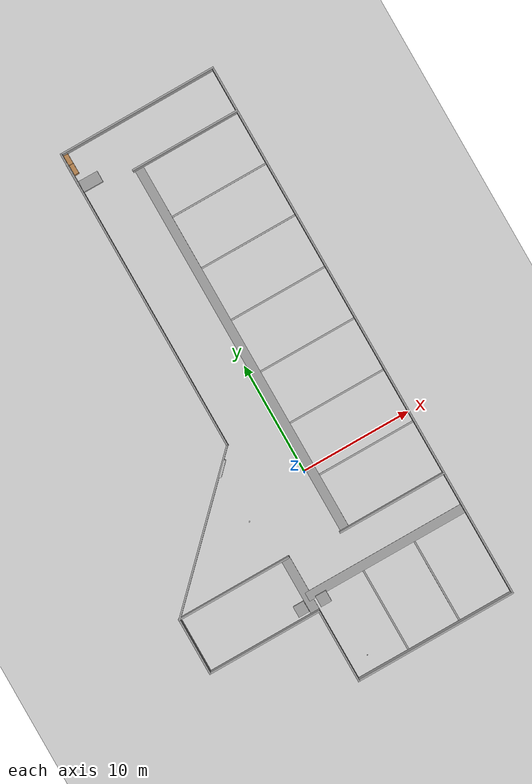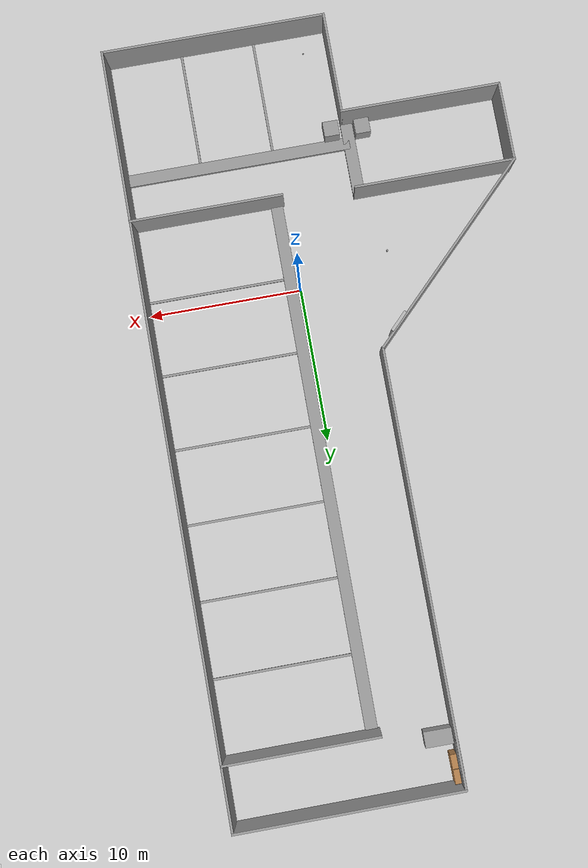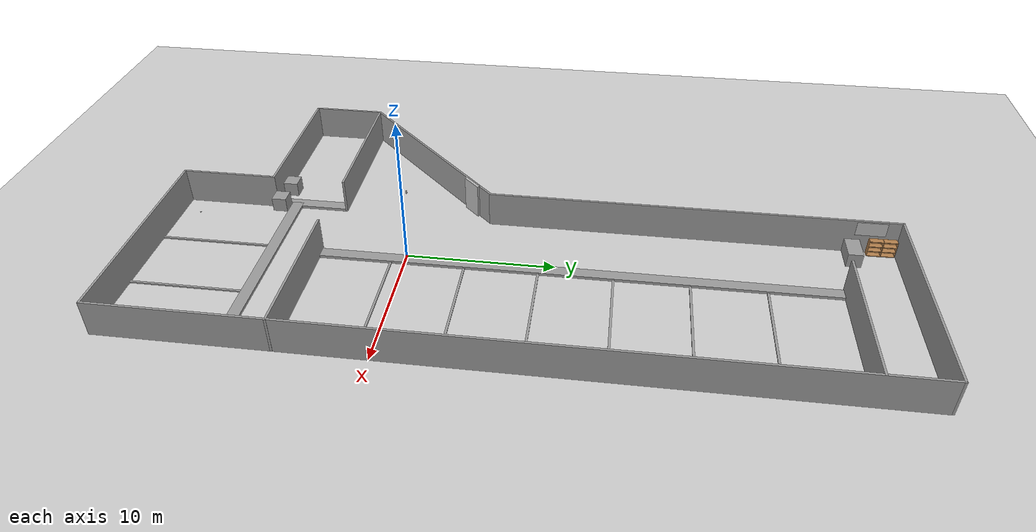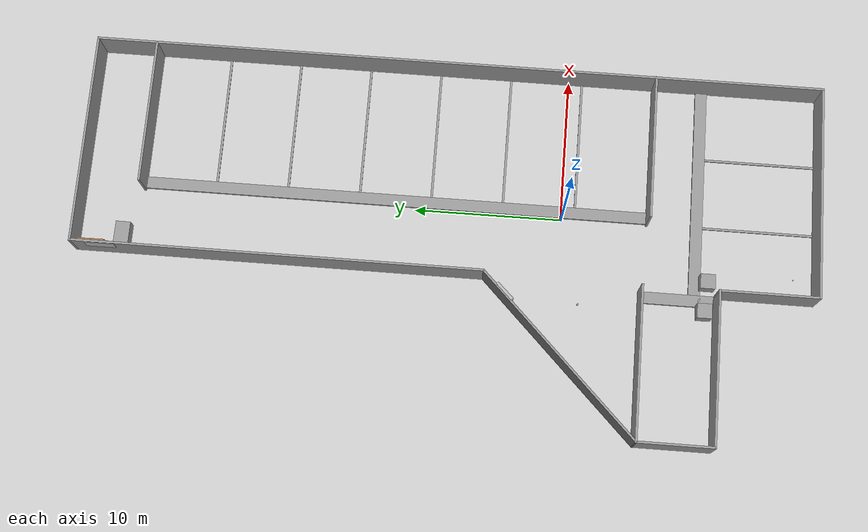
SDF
<sdf version="1.6">
 <world name="default">
  <model name="ground_plane">
   <static>1</static>
   <link name="link">
    <collision name="collision">
     <geometry><plane><normal>0 0 1</normal><size>100 100</size></plane></geometry>
     <surface>
      <contact><collide_bitmask>65535</collide_bitmask></contact>
      <friction><ode><mu>100</mu><mu2>50</mu2></ode></friction>
     </surface>
    </collision>
    <visual name="visual">
     <cast_shadows>0</cast_shadows>
     <geometry><plane><normal>0 0 1</normal><size>100 100</size></plane></geometry>
     <material>
      <script><uri>file://media/materials/scripts/gazebo.material</uri><name>Gazebo/Grey</name></script>
     </material>
    </visual>
   </link>
   <pose>-3.51447 11.9136 0 0 -0 0</pose>
  </model>
  <model name="bookshelf">
   <static>1</static>
   <link name="link">
    <inertial><mass>1</mass></inertial>
    <collision name="back">
     <pose>0 0.005 0.6 0 -0 0</pose>
     <geometry><box><size>0.9 0.01 1.2</size></box></geometry>
    </collision>
    <visual name="visual1">
     <pose>0 0.005 0.6 0 -0 0</pose>
     <geometry><box><size>0.9 0.01 1.2</size></box></geometry>
     <material>
      <script><uri>file://media/materials/scripts/gazebo.material</uri><name>Gazebo/Wood</name></script>
     </material>
    </visual>
    <collision name="left_side">
     <pose>0.45 -0.195 0.6 0 -0 0</pose>
     <geometry><box><size>0.02 0.4 1.2</size></box></geometry>
    </collision>
    <visual name="visual2">
     <pose>0.45 -0.195 0.6 0 -0 0</pose>
     <geometry><box><size>0.02 0.4 1.2</size></box></geometry>
     <material>
      <script><uri>file://media/materials/scripts/gazebo.material</uri><name>Gazebo/Wood</name></script>
     </material>
    </visual>
    <collision name="right_side">
     <pose>-0.45 -0.195 0.6 0 -0 0</pose>
     <geometry><box><size>0.02 0.4 1.2</size></box></geometry>
    </collision>
    <visual name="visual3">
     <pose>-0.45 -0.195 0.6 0 -0 0</pose>
     <geometry><box><size>0.02 0.4 1.2</size></box></geometry>
     <material>
      <script><uri>file://media/materials/scripts/gazebo.material</uri><name>Gazebo/Wood</name></script>
     </material>
    </visual>
    <collision name="bottom">
     <pose>0 -0.195 0.03 0 -0 0</pose>
     <geometry><box><size>0.88 0.4 0.06</size></box></geometry>
    </collision>
    <visual name="visual4">
     <pose>0 -0.195 0.03 0 -0 0</pose>
     <geometry><box><size>0.88 0.4 0.06</size></box></geometry>
     <material>
      <script><uri>file://media/materials/scripts/gazebo.material</uri><name>Gazebo/Wood</name></script>
     </material>
    </visual>
    <collision name="top">
     <pose>0 -0.195 1.19 0 -0 0</pose>
     <geometry><box><size>0.88 0.4 0.02</size></box></geometry>
    </collision>
    <visual name="visual5">
     <pose>0 -0.195 1.19 0 -0 0</pose>
     <geometry><box><size>0.88 0.4 0.02</size></box></geometry>
     <material>
      <script><uri>file://media/materials/scripts/gazebo.material</uri><name>Gazebo/Wood</name></script>
     </material>
    </visual>
    <collision name="low_shelf">
     <pose>0 -0.195 0.43 0 -0 0</pose>
     <geometry><box><size>0.88 0.4 0.02</size></box></geometry>
    </collision>
    <visual name="visual6">
     <pose>0 -0.195 0.43 0 -0 0</pose>
     <geometry><box><size>0.88 0.4 0.02</size></box></geometry>
     <material>
      <script><uri>file://media/materials/scripts/gazebo.material</uri><name>Gazebo/Wood</name></script>
     </material>
    </visual>
    <collision name="high_shelf">
     <pose>0 -0.195 0.8 0 -0 0</pose>
     <geometry><box><size>0.88 0.4 0.02</size></box></geometry>
    </collision>
    <visual name="visual7">
     <pose>0 -0.195 0.8 0 -0 0</pose>
     <geometry><box><size>0.88 0.4 0.02</size></box></geometry>
     <material>
      <script><uri>file://media/materials/scripts/gazebo.material</uri><name>Gazebo/Wood</name></script>
     </material>
    </visual>
   </link>
   <pose>-4.34494 32.0429 0 0 -0 1.57907</pose>
  </model>
  <model name="unit_box_0">
   <pose>-3.45196 29.5704 0.53 0 0 -0.006034</pose>
   <link name="link">
    <inertial>
     <mass>1</mass>
     <inertia>
      <ixx>0.166667</ixx>
      <ixy>0</ixy>
      <ixz>0</ixz>
      <iyy>0.166667</iyy>
      <iyz>0</iyz>
      <izz>0.166667</izz>
     </inertia>
    </inertial>
    <collision name="collision"><geometry><box><size>1.79572 1 1</size></box></geometry></collision>
    <visual name="visual">
     <geometry><box><size>1.79572 1 1</size></box></geometry>
     <material>
      <script><name>Gazebo/Grey</name><uri>file://media/materials/scripts/gazebo.material</uri></script>
     </material>
    </visual>
   </link>
  </model>
  <model name="unit_box_10">
   <pose>-3.82498 -9.95326 1 0 -0 0.000154</pose>
   <link name="link">
    <inertial>
     <mass>1</mass>
     <inertia>
      <ixx>0.166667</ixx>
      <ixy>0</ixy>
      <ixz>0</ixz>
      <iyy>0.166667</iyy>
      <iyz>0</iyz>
      <izz>0.166667</izz>
     </inertia>
    </inertial>
    <collision name="collision"><geometry><box><size>1 1 1</size></box></geometry></collision>
    <visual name="visual">
     <geometry><box><size>1 1 1</size></box></geometry>
     <material>
      <script><name>Gazebo/Grey</name><uri>file://media/materials/scripts/gazebo.material</uri></script>
     </material>
    </visual>
   </link>
  </model>
  <model name="unit_box_11">
   <pose>-5.85343 -9.79611 1 2e-06 -2e-06 0.007156</pose>
   <link name="link">
    <inertial>
     <mass>1</mass>
     <inertia>
      <ixx>0.166667</ixx>
      <ixy>0</ixy>
      <ixz>0</ixz>
      <iyy>0.166667</iyy>
      <iyz>0</iyz>
      <izz>0.166667</izz>
     </inertia>
    </inertial>
    <collision name="collision"><geometry><box><size>1 1 1</size></box></geometry></collision>
    <visual name="visual">
     <geometry><box><size>1 1 1</size></box></geometry>
     <material>
      <script><name>Gazebo/Grey</name><uri>file://media/materials/scripts/gazebo.material</uri></script>
     </material>
    </visual>
   </link>
  </model>
  <model name="Untitledasdasd">
   <pose>-2.51851 7.69425 0 0 -0 0</pose>
   <link name="Wall_0">
    <collision name="Wall_0_Collision">
     <geometry><box><size>15 0.15 2.5</size></box></geometry>
     <pose>0 0 1.25 0 -0 0</pose>
    </collision>
    <visual name="Wall_0_Visual">
     <pose>0 0 1.25 0 -0 0</pose>
     <geometry><box><size>15 0.15 2.5</size></box></geometry>
     <material>
      <script><uri>file://media/materials/scripts/gazebo.material</uri><name>Gazebo/Grey</name></script>
      <ambient>0.105882 0.0745098 0.0745098 1</ambient>
     </material>
     <meta><layer>0</layer></meta>
    </visual>
    <pose>-7.21413 -7.96136 0 0 -0 -2.35619</pose>
   </link>
   <link name="Wall_14">
    <collision name="Wall_14_Collision">
     <geometry><box><size>27.75 0.15 2.5</size></box></geometry>
     <pose>0 0 1.25 0 -0 0</pose>
    </collision>
    <visual name="Wall_14_Visual">
     <pose>0 0 1.25 0 -0 0</pose>
     <geometry><box><size>27.75 0.15 2.5</size></box></geometry>
     <material>
      <script><uri>file://media/materials/scripts/gazebo.material</uri><name>Gazebo/Grey</name></script>
      <ambient>0.105882 0.0745098 0.0745098 1</ambient>
     </material>
     <meta><layer>0</layer></meta>
    </visual>
    <pose>-1.90935 11.1233 0 0 -0 -1.5708</pose>
   </link>
   <link name="Wall_16">
    <collision name="Wall_16_Collision">
     <geometry><box><size>14.545 0.15 2.5</size></box></geometry>
     <pose>0 0 1.25 0 -0 0</pose>
    </collision>
    <visual name="Wall_16_Visual">
     <pose>0 0 1.25 0 -0 0</pose>
     <geometry><box><size>14.545 0.15 2.5</size></box></geometry>
     <material>
      <script><uri>file://media/materials/scripts/gazebo.material</uri><name>Gazebo/Grey</name></script>
      <ambient>0.105882 0.0745098 0.0745098 1</ambient>
     </material>
     <meta><layer>0</layer></meta>
    </visual>
    <pose>5.28812 24.9308 0 0 -0 0.001049</pose>
   </link>
   <link name="Wall_18">
    <collision name="Wall_18_Collision">
     <geometry><box><size>10 0.15 2.5</size></box></geometry>
     <pose>0 0 1.25 0 -0 0</pose>
    </collision>
    <visual name="Wall_18_Visual">
     <pose>0 0 1.25 0 -0 0</pose>
     <geometry><box><size>10 0.15 2.5</size></box></geometry>
     <material>
      <script><uri>file://media/materials/scripts/gazebo.material</uri><name>Gazebo/Grey</name></script>
      <ambient>0.105882 0.0745098 0.0745098 1</ambient>
     </material>
     <meta><layer>0</layer></meta>
    </visual>
    <pose>7.53565 20.8688 0 0 -0 0</pose>
   </link>
   <link name="Wall_20">
    <collision name="Wall_20_Collision">
     <geometry><box><size>9 0.15 0.1</size></box></geometry>
     <pose>0 0 0.05 0 -0 0</pose>
    </collision>
    <visual name="Wall_20_Visual">
     <pose>0 0 0.05 0 -0 0</pose>
     <geometry><box><size>9 0.15 0.1</size></box></geometry>
     <material>
      <script><uri>file://media/materials/scripts/gazebo.material</uri><name>Gazebo/Grey</name></script>
      <ambient>1 1 1 1</ambient>
     </material>
     <meta><layer>0</layer></meta>
    </visual>
    <pose>7.93325 16.0236 0 0 -0 0</pose>
   </link>
   <link name="Wall_22">
    <collision name="Wall_22_Collision">
     <geometry><box><size>9 0.15 0.1</size></box></geometry>
     <pose>0 0 0.05 0 -0 0</pose>
    </collision>
    <visual name="Wall_22_Visual">
     <pose>0 0 0.05 0 -0 0</pose>
     <geometry><box><size>9 0.15 0.1</size></box></geometry>
     <material>
      <script><uri>file://media/materials/scripts/gazebo.material</uri><name>Gazebo/Grey</name></script>
      <ambient>1 1 1 1</ambient>
     </material>
     <meta><layer>0</layer></meta>
    </visual>
    <pose>7.93325 11.1126 0 0 -0 0</pose>
   </link>
   <link name="Wall_24">
    <collision name="Wall_24_Collision">
     <geometry><box><size>9 0.15 0.1</size></box></geometry>
     <pose>0 0 0.05 0 -0 0</pose>
    </collision>
    <visual name="Wall_24_Visual">
     <pose>0 0 0.05 0 -0 0</pose>
     <geometry><box><size>9 0.15 0.1</size></box></geometry>
     <material>
      <script><uri>file://media/materials/scripts/gazebo.material</uri><name>Gazebo/Grey</name></script>
      <ambient>1 1 1 1</ambient>
     </material>
     <meta><layer>0</layer></meta>
    </visual>
    <pose>7.91425 6.16455 0 0 -0 0</pose>
   </link>
   <link name="Wall_26">
    <collision name="Wall_26_Collision">
     <geometry><box><size>9 0.15 0.1</size></box></geometry>
     <pose>0 0 0.05 0 -0 0</pose>
    </collision>
    <visual name="Wall_26_Visual">
     <pose>0 0 0.05 0 -0 0</pose>
     <geometry><box><size>9 0.15 0.1</size></box></geometry>
     <material>
      <script><uri>file://media/materials/scripts/gazebo.material</uri><name>Gazebo/Grey</name></script>
      <ambient>1 1 1 1</ambient>
     </material>
     <meta><layer>0</layer></meta>
    </visual>
    <pose>7.93325 1.24455 0 0 -0 0</pose>
   </link>
   <link name="Wall_28">
    <collision name="Wall_28_Collision">
     <geometry><box><size>9 0.15 0.1</size></box></geometry>
     <pose>0 0 0.05 0 -0 0</pose>
    </collision>
    <visual name="Wall_28_Visual">
     <pose>0 0 0.05 0 -0 0</pose>
     <geometry><box><size>9 0.15 0.1</size></box></geometry>
     <material>
      <script><uri>file://media/materials/scripts/gazebo.material</uri><name>Gazebo/Grey</name></script>
      <ambient>1 1 1 1</ambient>
     </material>
     <meta><layer>0</layer></meta>
    </visual>
    <pose>7.90425 -3.66545 0 0 -0 0</pose>
   </link>
   <link name="Wall_3">
    <collision name="Wall_3_Collision">
     <geometry><box><size>5.25 0.15 2.5</size></box></geometry>
     <pose>0 0 1.25 0 -0 0</pose>
    </collision>
    <visual name="Wall_3_Visual">
     <pose>0 0 1.25 0 -0 0</pose>
     <geometry><box><size>5.25 0.15 2.5</size></box></geometry>
     <material>
      <script><uri>file://media/materials/scripts/gazebo.material</uri><name>Gazebo/Grey</name></script>
      <ambient>0.105882 0.0745098 0.0745098 1</ambient>
     </material>
     <meta><layer>0</layer></meta>
    </visual>
    <pose>-12.4644 -15.7616 0 0 -0 -1.5708</pose>
   </link>
   <link name="Wall_30">
    <collision name="Wall_30_Collision">
     <geometry><box><size>9 0.15 0.1</size></box></geometry>
     <pose>0 0 0.05 0 -0 0</pose>
    </collision>
    <visual name="Wall_30_Visual">
     <pose>0 0 0.05 0 -0 0</pose>
     <geometry><box><size>9 0.15 0.1</size></box></geometry>
     <material>
      <script><uri>file://media/materials/scripts/gazebo.material</uri><name>Gazebo/Grey</name></script>
      <ambient>1 1 1 1</ambient>
     </material>
     <meta><layer>0</layer></meta>
    </visual>
    <pose>7.93325 -8.60445 0 0 -0 0</pose>
   </link>
   <link name="Wall_33">
    <collision name="Wall_33_Collision">
     <geometry><box><size>10 0.15 2.5</size></box></geometry>
     <pose>0 0 1.25 0 -0 0</pose>
    </collision>
    <visual name="Wall_33_Visual">
     <pose>0 0 1.25 0 -0 0</pose>
     <geometry><box><size>10 0.15 2.5</size></box></geometry>
     <material>
      <script><uri>file://media/materials/scripts/gazebo.material</uri><name>Gazebo/Grey</name></script>
      <ambient>0.105882 0.0745098 0.0745098 1</ambient>
     </material>
     <meta><layer>0</layer></meta>
    </visual>
    <pose>7.57047 -13.5431 0 0 -0 0</pose>
   </link>
   <link name="Wall_37">
    <collision name="Wall_37_Collision">
     <geometry><box><size>15 0.8 0.2</size></box></geometry>
     <pose>0 0 0.1 0 -0 0</pose>
    </collision>
    <visual name="Wall_37_Visual">
     <pose>0 0 0.1 0 -0 0</pose>
     <geometry><box><size>15 0.8 0.2</size></box></geometry>
     <material>
      <script><uri>file://media/materials/scripts/gazebo.material</uri><name>Gazebo/Grey</name></script>
      <ambient>1 1 1 1</ambient>
     </material>
     <meta><layer>0</layer></meta>
    </visual>
    <pose>5.05877 -16.9274 0 0 -0 0</pose>
   </link>
   <link name="Wall_40">
    <collision name="Wall_40_Collision">
     <geometry><box><size>5.25 0.8 0.2</size></box></geometry>
     <pose>0 0 0.1 0 -0 0</pose>
    </collision>
    <visual name="Wall_40_Visual">
     <pose>0 0 0.1 0 -0 0</pose>
     <geometry><box><size>5.25 0.8 0.2</size></box></geometry>
     <material>
      <script><uri>file://media/materials/scripts/gazebo.material</uri><name>Gazebo/Grey</name></script>
      <ambient>1 1 1 1</ambient>
     </material>
     <meta><layer>0</layer></meta>
    </visual>
    <pose>-2.43969 -15.7711 0 0 -0 -1.5708</pose>
   </link>
   <link name="Wall_43">
    <collision name="Wall_43_Collision">
     <geometry><box><size>7.75 0.15 0.1</size></box></geometry>
     <pose>0 0 0.05 0 -0 0</pose>
    </collision>
    <visual name="Wall_43_Visual">
     <pose>0 0 0.05 0 -0 0</pose>
     <geometry><box><size>7.75 0.15 0.1</size></box></geometry>
     <material>
      <script><uri>file://media/materials/scripts/gazebo.material</uri><name>Gazebo/Grey</name></script>
      <ambient>1 1 1 1</ambient>
     </material>
     <meta><layer>0</layer></meta>
    </visual>
    <pose>2.70025 -21.0684 0 0 -0 1.5708</pose>
   </link>
   <link name="Wall_45">
    <collision name="Wall_45_Collision">
     <geometry><box><size>7.75 0.15 0.1</size></box></geometry>
     <pose>0 0 0.05 0 -0 0</pose>
    </collision>
    <visual name="Wall_45_Visual">
     <pose>0 0 0.05 0 -0 0</pose>
     <geometry><box><size>7.75 0.15 0.1</size></box></geometry>
     <material>
      <script><uri>file://media/materials/scripts/gazebo.material</uri><name>Gazebo/Grey</name></script>
      <ambient>1 1 1 1</ambient>
     </material>
     <meta><layer>0</layer></meta>
    </visual>
    <pose>7.57625 -21.1384 0 0 -0 1.5708</pose>
   </link>
   <link name="Wall_47">
    <collision name="Wall_47_Collision">
     <geometry><box><size>10.5 0.15 2.5</size></box></geometry>
     <pose>0 0 1.25 0 -0 0</pose>
    </collision>
    <visual name="Wall_47_Visual">
     <pose>0 0 1.25 0 -0 0</pose>
     <geometry><box><size>10.5 0.15 2.5</size></box></geometry>
     <material>
      <script><uri>file://media/materials/scripts/gazebo.material</uri><name>Gazebo/Grey</name></script>
      <ambient>0.105882 0.0745098 0.0745098 1</ambient>
     </material>
     <meta><layer>0</layer></meta>
    </visual>
    <pose>-7.2894 -13.2116 0 0 -0 0</pose>
   </link>
   <link name="Wall_49">
    <collision name="Wall_49_Collision">
     <geometry><box><size>34.5 0.8 0.2</size></box></geometry>
     <pose>0 0 0.1 0 -0 0</pose>
    </collision>
    <visual name="Wall_49_Visual">
     <pose>0 0 0.1 0 -0 0</pose>
     <geometry><box><size>34.5 0.8 0.2</size></box></geometry>
     <material>
      <script><uri>file://media/materials/scripts/gazebo.material</uri><name>Gazebo/Grey</name></script>
      <ambient>1 1 1 1</ambient>
     </material>
     <meta><layer>0</layer></meta>
    </visual>
    <pose>3.07569 3.69647 0 0 -0 -1.5708</pose>
   </link>
   <link name="Wall_6">
    <collision name="Wall_6_Collision">
     <geometry><box><size>10.5 0.15 2.5</size></box></geometry>
     <pose>0 0 1.25 0 -0 0</pose>
    </collision>
    <visual name="Wall_6_Visual">
     <pose>0 0 1.25 0 -0 0</pose>
     <geometry><box><size>10.5 0.15 2.5</size></box></geometry>
     <material>
      <script><uri>file://media/materials/scripts/gazebo.material</uri><name>Gazebo/Grey</name></script>
      <ambient>0.105882 0.0745098 0.0745098 1</ambient>
     </material>
     <meta><layer>0</layer></meta>
    </visual>
    <pose>-7.2894 -18.3116 0 0 -0 0</pose>
   </link>
   <link name="Wall_7">
    <collision name="Wall_7_Collision">
     <geometry><box><size>6.75 0.15 2.5</size></box></geometry>
     <pose>0 0 1.25 0 -0 0</pose>
    </collision>
    <visual name="Wall_7_Visual">
     <pose>0 0 1.25 0 -0 0</pose>
     <geometry><box><size>6.75 0.15 2.5</size></box></geometry>
     <material>
      <script><uri>file://media/materials/scripts/gazebo.material</uri><name>Gazebo/Grey</name></script>
      <ambient>0.105882 0.0745098 0.0745098 1</ambient>
     </material>
     <meta><layer>0</layer></meta>
    </visual>
    <pose>-2.1144 -21.6116 0 0 -0 -1.5708</pose>
   </link>
   <link name="Wall_8">
    <collision name="Wall_8_Collision">
     <geometry><box><size>14.75 0.15 2.5</size></box></geometry>
     <pose>0 0 1.25 0 -0 0</pose>
    </collision>
    <visual name="Wall_8_Visual">
     <pose>0 0 1.25 0 -0 0</pose>
     <geometry><box><size>14.75 0.15 2.5</size></box></geometry>
     <material>
      <script><uri>file://media/materials/scripts/gazebo.material</uri><name>Gazebo/Grey</name></script>
      <ambient>0.105882 0.0745098 0.0745098 1</ambient>
     </material>
     <meta><layer>0</layer></meta>
    </visual>
    <pose>5.1856 -24.9116 0 0 -0 0</pose>
   </link>
   <link name="Wall_9">
    <collision name="Wall_9_Collision">
     <geometry><box><size>50 0.15 2.5</size></box></geometry>
     <pose>0 0 1.25 0 -0 0</pose>
    </collision>
    <visual name="Wall_9_Visual">
     <pose>0 0 1.25 0 -0 0</pose>
     <geometry><box><size>50 0.15 2.5</size></box></geometry>
     <material>
      <script><uri>file://media/materials/scripts/gazebo.material</uri><name>Gazebo/Grey</name></script>
      <ambient>0.105882 0.0745098 0.0745098 1</ambient>
     </material>
     <meta><layer>0</layer></meta>
    </visual>
    <pose>12.4856 0.01337 0 0 -0 1.5708</pose>
   </link>
   <static>1</static>
  </model>
  <model name="bookshelf_clone">
   <static>1</static>
   <link name="link">
    <inertial><mass>1</mass></inertial>
    <collision name="back">
     <pose>0 0.005 0.6 0 -0 0</pose>
     <geometry><box><size>0.9 0.01 1.2</size></box></geometry>
    </collision>
    <visual name="visual1">
     <pose>0 0.005 0.6 0 -0 0</pose>
     <geometry><box><size>0.9 0.01 1.2</size></box></geometry>
     <material>
      <script><uri>file://media/materials/scripts/gazebo.material</uri><name>Gazebo/Wood</name></script>
     </material>
    </visual>
    <collision name="left_side">
     <pose>0.45 -0.195 0.6 0 -0 0</pose>
     <geometry><box><size>0.02 0.4 1.2</size></box></geometry>
    </collision>
    <visual name="visual2">
     <pose>0.45 -0.195 0.6 0 -0 0</pose>
     <geometry><box><size>0.02 0.4 1.2</size></box></geometry>
     <material>
      <script><uri>file://media/materials/scripts/gazebo.material</uri><name>Gazebo/Wood</name></script>
     </material>
    </visual>
    <collision name="right_side">
     <pose>-0.45 -0.195 0.6 0 -0 0</pose>
     <geometry><box><size>0.02 0.4 1.2</size></box></geometry>
    </collision>
    <visual name="visual3">
     <pose>-0.45 -0.195 0.6 0 -0 0</pose>
     <geometry><box><size>0.02 0.4 1.2</size></box></geometry>
     <material>
      <script><uri>file://media/materials/scripts/gazebo.material</uri><name>Gazebo/Wood</name></script>
     </material>
    </visual>
    <collision name="bottom">
     <pose>0 -0.195 0.03 0 -0 0</pose>
     <geometry><box><size>0.88 0.4 0.06</size></box></geometry>
    </collision>
    <visual name="visual4">
     <pose>0 -0.195 0.03 0 -0 0</pose>
     <geometry><box><size>0.88 0.4 0.06</size></box></geometry>
     <material>
      <script><uri>file://media/materials/scripts/gazebo.material</uri><name>Gazebo/Wood</name></script>
     </material>
    </visual>
    <collision name="top">
     <pose>0 -0.195 1.19 0 -0 0</pose>
     <geometry><box><size>0.88 0.4 0.02</size></box></geometry>
    </collision>
    <visual name="visual5">
     <pose>0 -0.195 1.19 0 -0 0</pose>
     <geometry><box><size>0.88 0.4 0.02</size></box></geometry>
     <material>
      <script><uri>file://media/materials/scripts/gazebo.material</uri><name>Gazebo/Wood</name></script>
     </material>
    </visual>
    <collision name="low_shelf">
     <pose>0 -0.195 0.43 0 -0 0</pose>
     <geometry><box><size>0.88 0.4 0.02</size></box></geometry>
    </collision>
    <visual name="visual6">
     <pose>0 -0.195 0.43 0 -0 0</pose>
     <geometry><box><size>0.88 0.4 0.02</size></box></geometry>
     <material>
      <script><uri>file://media/materials/scripts/gazebo.material</uri><name>Gazebo/Wood</name></script>
     </material>
    </visual>
    <collision name="high_shelf">
     <pose>0 -0.195 0.8 0 -0 0</pose>
     <geometry><box><size>0.88 0.4 0.02</size></box></geometry>
    </collision>
    <visual name="visual7">
     <pose>0 -0.195 0.8 0 -0 0</pose>
     <geometry><box><size>0.88 0.4 0.02</size></box></geometry>
     <material>
      <script><uri>file://media/materials/scripts/gazebo.material</uri><name>Gazebo/Wood</name></script>
     </material>
    </visual>
   </link>
   <pose>-4.33228 31.1176 0 0 -0 1.57907</pose>
  </model>
  <model name="company_mark">
   <static>1</static>
   <link name="link">
    <pose>0 0 1.4 0 -0 0</pose>
    <collision name="collision"><geometry><box><size>2 0.2 1</size></box></geometry></collision>
    <visual name="visual">
     <cast_shadows>0</cast_shadows>
     <geometry><box><size>2 0.2 1</size></box></geometry>
     <material>
      <script>
       <uri>model://company_mark/materials/scripts</uri>
       <uri>model://company_mark/materials/textures</uri>
       <name>vrc/company_mark</name>
      </script>
     </material>
    </visual>
   </link>
   <pose>-4.42144 30.6702 0.51146 0 0 -1.56778</pose>
  </model>
  <model name="frc2016_ball_clone_4_clone_46">
   <pose>-3.01249 -15.8815 0.099801 0 -0 0</pose>
   <link name="link">
    <inertial>
     <mass>0.213</mass>
     <inertia>
      <ixx>0.00322667</ixx>
      <ixy>0</ixy>
      <ixz>0</ixz>
      <iyy>0.00322667</iyy>
      <iyz>0</iyz>
      <izz>0.00322667</izz>
     </inertia>
    </inertial>
    <visual name="visual"><geometry><sphere><radius>0.0506132</radius></sphere></geometry></visual>
    <collision name="collision">
     <geometry><sphere><radius>0.0506132</radius></sphere></geometry>
     <surface>
      <bounce><restitution_coefficient>0.15937</restitution_coefficient><threshold>0</threshold></bounce>
      <contact><ode><max_vel>100</max_vel><min_depth>0.001</min_depth></ode></contact>
     </surface>
    </collision>
   </link>
  </model>
  <model name="vending">
   <static>1</static>
   <link name="link">
    <pose>0 0 1.4 0 -0 0</pose>
    <collision name="collision"><geometry><box><size>1.5 0.2 2.5</size></box></geometry></collision>
    <visual name="visual">
     <cast_shadows>0</cast_shadows>
     <geometry><box><size>1.5 0.2 2.5</size></box></geometry>
     <material>
      <script>
       <uri>model://vending/materials/scripts</uri>
       <uri>model://vending/materials/textures</uri>
       <name>vrc/vending</name>
      </script>
     </material>
    </visual>
   </link>
   <pose>-5.74071 3.53217 -0.142442 0 -0 0.795586</pose>
  </model>
  <model name="beer_clone">
   <link name="link">
    <pose>0 0 0.115 0 -0 0</pose>
    <inertial>
     <mass>0.39</mass>
     <inertia><ixx>0.00058</ixx><ixy>0</ixy><ixz>0</ixz><iyy>0.00058</iyy><iyz>0</iyz><izz>0.00019</izz></inertia>
    </inertial>
    <collision name="collision">
     <geometry><cylinder><radius>0.055</radius><length>0.23</length></cylinder></geometry>
    </collision>
    <visual name="visual">
     <geometry><cylinder><radius>0.055</radius><length>0.23</length></cylinder></geometry>
     <material>
      <script>
       <uri>model://beer/materials/scripts</uri>
       <uri>model://beer/materials/textures</uri>
       <name>Beer/Diffuse</name>
      </script>
     </material>
    </visual>
   </link>
   <pose>-5.98781 -1.3883 0.964761 2e-05 2.5e-05 0.002394</pose>
  </model>
 </world>
</sdf>
